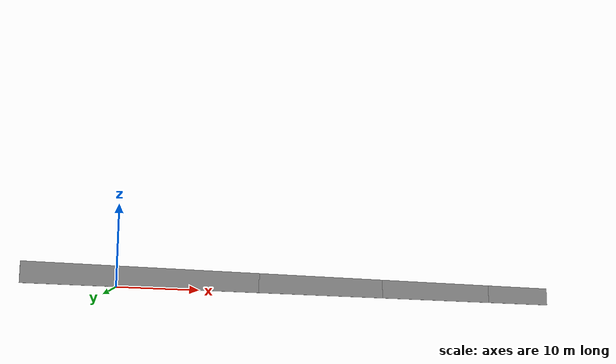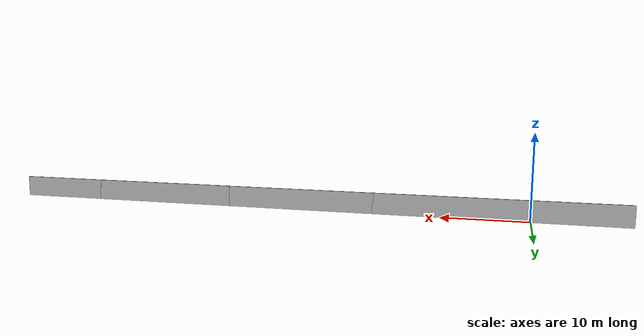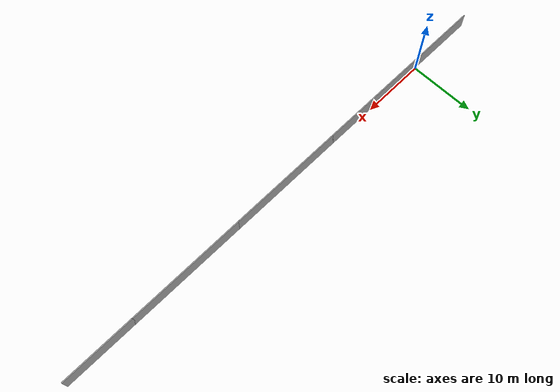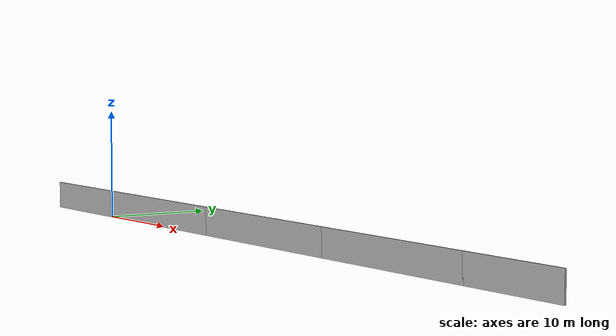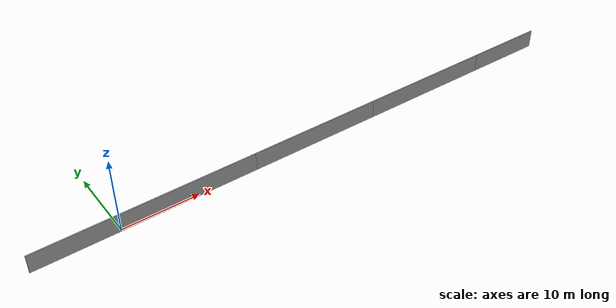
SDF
<?xml version='1.0'?>
<sdf version='1.6'>
  <model name='girder8th'>
    <pose frame=''>26.745 -0.14 0 0 -0 0</pose>
    <link name='Wall_15'>
      <collision name='Wall_15_Collision'>
        <geometry>
          <box>
            <size>18 0.15 2.5</size>
          </box>
        </geometry>
        <pose frame=''>0 0 1.25 0 -0 0</pose>
      </collision>
      <visual name='Wall_15_Visual'>
        <pose frame=''>0 0 1.25 0 -0 0</pose>
        <geometry>
          <box>
            <size>18 0.15 2.5</size>
          </box>
        </geometry>
        <material>
          <script>
            <uri>file://media/materials/scripts/gazebo.material</uri>
            <name>Gazebo/Grey</name>
          </script>
          <ambient>1 1 1 1</ambient>
        </material>
      </visual>
      <pose frame=''>-17.85 0 0 0 -0 0</pose>
    </link>
    <link name='Wall_17'>
      <collision name='Wall_17_Collision'>
        <geometry>
          <box>
            <size>18 0.15 2.5</size>
          </box>
        </geometry>
        <pose frame=''>0 0 1.25 0 -0 0</pose>
      </collision>
      <visual name='Wall_17_Visual'>
        <pose frame=''>0 0 1.25 0 -0 0</pose>
        <geometry>
          <box>
            <size>18 0.15 2.5</size>
          </box>
        </geometry>
        <material>
          <script>
            <uri>file://media/materials/scripts/gazebo.material</uri>
            <name>Gazebo/Grey</name>
          </script>
          <ambient>1 1 1 1</ambient>
        </material>
      </visual>
      <pose frame=''>0 0 0 0 -0 0</pose>
    </link>
    <link name='Wall_19'>
      <collision name='Wall_19_Collision'>
        <geometry>
          <box>
            <size>18 0.15 2.5</size>
          </box>
        </geometry>
        <pose frame=''>0 0 1.25 0 -0 0</pose>
      </collision>
      <visual name='Wall_19_Visual'>
        <pose frame=''>0 0 1.25 0 -0 0</pose>
        <geometry>
          <box>
            <size>18 0.15 2.5</size>
          </box>
        </geometry>
        <material>
          <script>
            <uri>file://media/materials/scripts/gazebo.material</uri>
            <name>Gazebo/Grey</name>
          </script>
          <ambient>1 1 1 1</ambient>
        </material>
      </visual>
      <pose frame=''>17.85 0 0 0 -0 0</pose>
    </link>
    <link name='Wall_21'>
      <collision name='Wall_21_Collision'>
        <geometry>
          <box>
            <size>10.8 0.15 2.5</size>
          </box>
        </geometry>
        <pose frame=''>0 0 1.25 0 -0 0</pose>
      </collision>
      <visual name='Wall_21_Visual'>
        <pose frame=''>0 0 1.25 0 -0 0</pose>
        <geometry>
          <box>
            <size>10.8 0.15 2.5</size>
          </box>
        </geometry>
        <material>
          <script>
            <uri>file://media/materials/scripts/gazebo.material</uri>
            <name>Gazebo/Grey</name>
          </script>
          <ambient>1 1 1 1</ambient>
        </material>
      </visual>
      <pose frame=''>32.1 0 0 0 -0 0</pose>
    </link>
    <link name='Wall_9'>
      <collision name='Wall_9_Collision'>
        <geometry>
          <box>
            <size>10.8 0.15 2.5</size>
          </box>
        </geometry>
        <pose frame=''>0 0 1.25 0 -0 0</pose>
      </collision>
      <visual name='Wall_9_Visual'>
        <pose frame=''>0 0 1.25 0 -0 0</pose>
        <geometry>
          <box>
            <size>10.8 0.15 2.5</size>
          </box>
        </geometry>
        <material>
          <script>
            <uri>file://media/materials/scripts/gazebo.material</uri>
            <name>Gazebo/Grey</name>
          </script>
          <ambient>1 1 1 1</ambient>
        </material>
      </visual>
      <pose frame=''>-32.1 0 0 0 -0 0</pose>
    </link>
    <static>1</static>
  </model>
</sdf>
